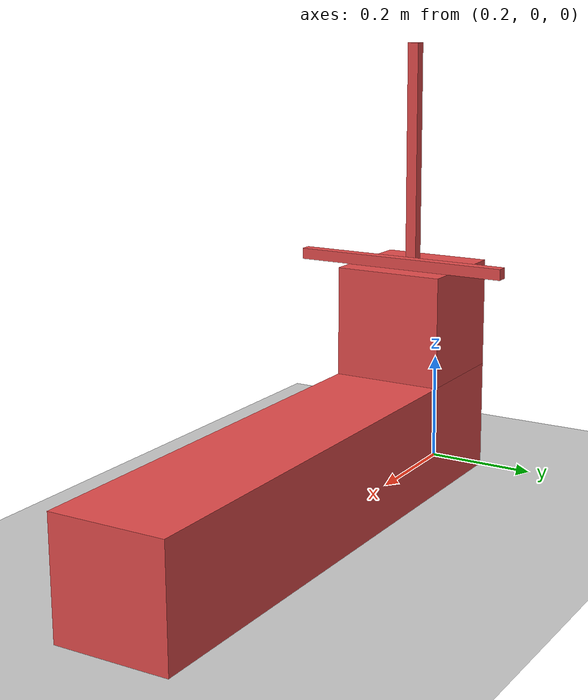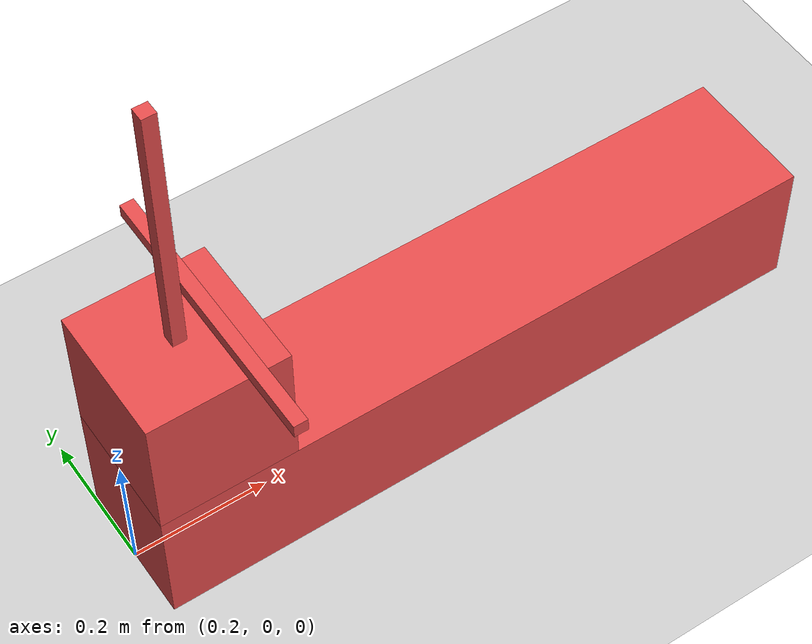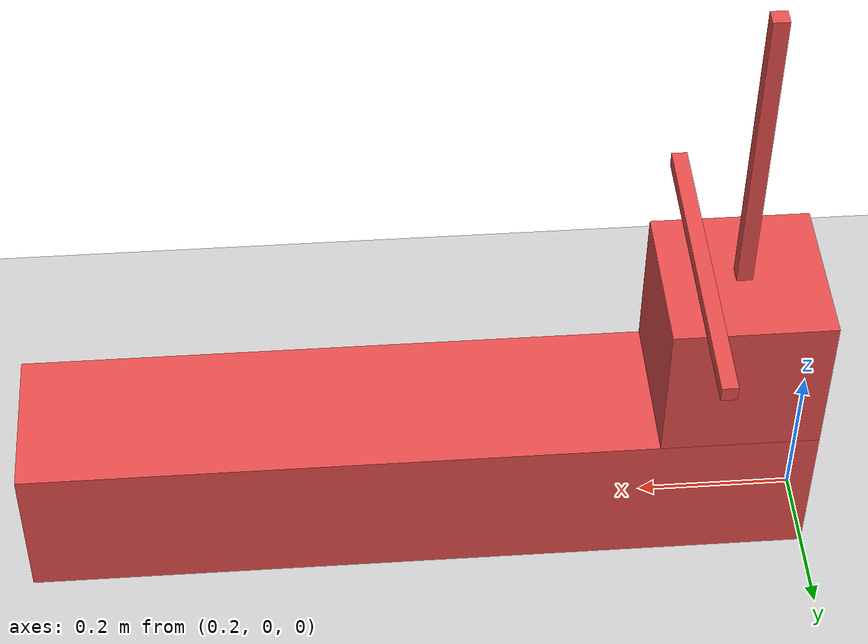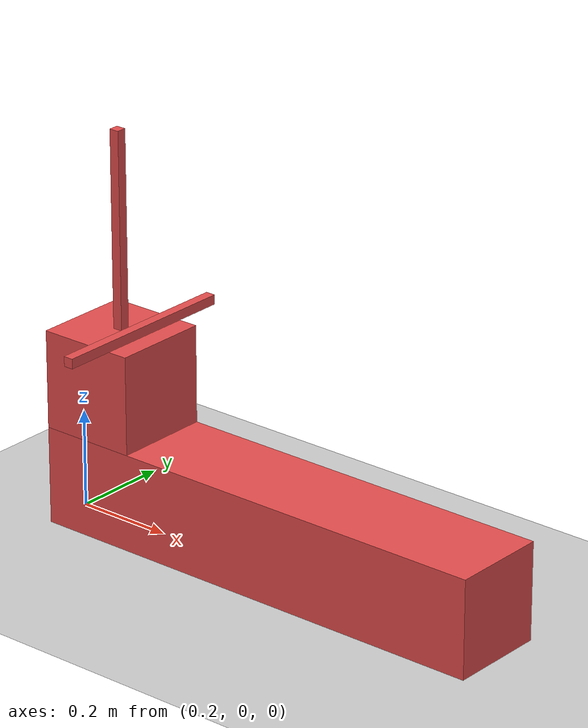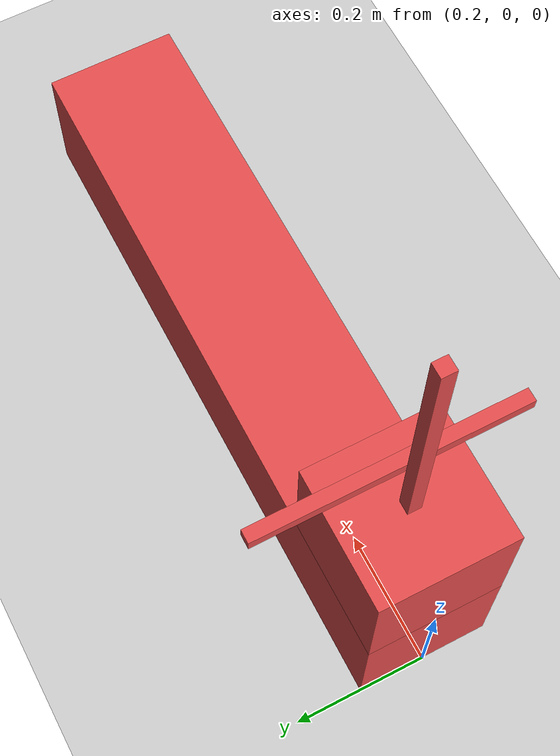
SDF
<sdf version="1.6">
 <world name="default">
  <light name="sun" type="directional">
   <pose>0 0 10 0 -0 0</pose>
   <diffuse>0.8 0.8 0.8 1</diffuse>
   <specular>0.2 0.2 0.2 1</specular>
   <attenuation>
    <range>1000</range>
    <constant>0.9</constant>
    <linear>0.01</linear>
    <quadratic>0.001</quadratic>
   </attenuation>
   <direction>-0.5 0.1 -0.9</direction>
  </light>
  <model name="ground_plane">
   <static>1</static>
   <link name="link">
    <collision name="collision">
     <geometry><plane><normal>0 0 1</normal><size>100 100</size></plane></geometry>
     <surface><friction><ode><mu>100</mu><mu2>50</mu2></ode></friction></surface>
    </collision>
    <sensor name="camera" type="camera">
     <camera name="camera_world">
      <pose>3.5 -3.5 3.5 -0 0.6 2.3</pose>
      <horizontal_fov>1.047</horizontal_fov>
      <image><width>1280</width><height>720</height></image>
      <clip><near>0.1</near><far>100</far></clip>
      <save enabled="1"><path>/tmp/camera_world</path></save>
     </camera>
     <always_on>0</always_on>
     <update_rate>30</update_rate>
     <visualize>0</visualize>
    </sensor>
    <visual name="visual">
     <cast_shadows>0</cast_shadows>
     <geometry><plane><normal>0 0 1</normal><size>100 100</size></plane></geometry>
     <material>
      <script><uri>file://media/materials/scripts/gazebo.material</uri><name>Gazebo/Grey</name></script>
     </material>
    </visual>
   </link>
  </model>
  <gravity>0 0 -9.8</gravity>
  <magnetic_field>6e-06 2.3e-05 -4.2e-05</magnetic_field>
  <atmosphere type="adiabatic"/>
  <physics name="default_physics" default="0" type="ode">
   <max_step_size>0.0005</max_step_size>
   <real_time_factor>1</real_time_factor>
   <real_time_update_rate>2000</real_time_update_rate>
  </physics>
  <scene><ambient>0.4 0.4 0.4 1</ambient><background>0.7 0.7 0.7 1</background><shadows>1</shadows></scene>
  <spherical_coordinates>
   <surface_model>EARTH_WGS84</surface_model>
   <latitude_deg>0</latitude_deg>
   <longitude_deg>0</longitude_deg>
   <elevation>0</elevation>
   <heading_deg>0</heading_deg>
  </spherical_coordinates>
  <include>
   <uri>../objects/BoxSmall</uri>
   <name>BoxSmall</name>
   <pose>0.3 0 0.3 0 -0 0</pose>
   <static>0</static>
  </include>
  <include>
   <uri>../objects/BoxBig</uri>
   <name>BoxBig</name>
   <pose>0.7 0 0.1 0 -0 0</pose>
   <static>0</static>
  </include>
  <include>
   <uri>../objects/Broom</uri>
   <name>Broom</name>
   <pose>0.3 0 0.6 0 -0 0</pose>
   <static>0</static>
  </include>
  <include>
   <uri>../objects/Cart</uri>
   <name>Cart</name>
   <pose>0.35 0 0.41 0 -0 0</pose>
   <static>0</static>
  </include>
 </world>
</sdf>

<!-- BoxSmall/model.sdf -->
<sdf version='1.6'>
  <model name='BoxSmall'>
    <link name='link'>
      <inertial>
        <mass>0.470029</mass>
        <inertia>
          <ixx>0.0013484</ixx>
          <ixy>0</ixy>
          <ixz>0</ixz>
          <iyy>0.00131238</iyy>
          <iyz>0</iyz>
          <izz>0.00199015</izz>
        </inertia>
        <pose frame=''>0 0 0 0 -0 0</pose>
      </inertial>
      <self_collide>0</self_collide>
      <enable_wind>0</enable_wind>
      <kinematic>0</kinematic>
      <pose frame=''>0 0 0 0 -0 0</pose>
      <gravity>1</gravity>
      <visual name='visual'>
        <pose frame=''>0 0 0 0 -0 0</pose>
        <geometry>
          <box>
            <size>0.2 0.2 0.2</size>
          </box>
        </geometry>
        <material>
          <shader type='pixel'>
            <normal_map>__default__</normal_map>
          </shader>
          <script>
            <name>ModelPreview_1::link::visual_MATERIAL_ModelPreview_1::link::visual_MATERIAL_</name>
            <uri>__default__</uri>
          </script>
          <ambient>0 0 0 1</ambient>
          <diffuse>0.9 0.3 0.3 1</diffuse>
          <specular>0.9 0.3 0.3 1</specular>
          <emissive>0.9 0.3 0.3 1</emissive>
        </material>
        <transparency>0</transparency>
        <cast_shadows>1</cast_shadows>
      </visual>
      <collision name='collision'>
        <laser_retro>0</laser_retro>
        <max_contacts>10</max_contacts>
        <pose frame=''>0 0 0 0 -0 0</pose>
        <geometry>
          <box>
            <size>0.2 0.2 0.2</size>
          </box>
        </geometry>
        <surface>
          <friction>
            <ode>
              <mu>1</mu>
              <mu2>1</mu2>
              <fdir1>0 0 0</fdir1>
              <slip1>0</slip1>
              <slip2>0</slip2>
            </ode>
            <torsional>
              <coefficient>1</coefficient>
              <patch_radius>0</patch_radius>
              <surface_radius>0</surface_radius>
              <use_patch_radius>1</use_patch_radius>
              <ode>
                <slip>0</slip>
              </ode>
            </torsional>
          </friction>
          <bounce>
            <restitution_coefficient>0</restitution_coefficient>
            <threshold>1e+06</threshold>
          </bounce>
          <contact>
            <collide_without_contact>0</collide_without_contact>
            <collide_without_contact_bitmask>1</collide_without_contact_bitmask>
            <collide_bitmask>1</collide_bitmask>
            <ode>
              <soft_cfm>0</soft_cfm>
              <soft_erp>0.2</soft_erp>
              <kp>100000</kp>
              <kd>1</kd>
              <max_vel>0.1</max_vel>
              <min_depth>0.001</min_depth>
            </ode>
            <bullet>
              <split_impulse>1</split_impulse>
              <split_impulse_penetration_threshold>-0.01</split_impulse_penetration_threshold>
              <soft_cfm>0</soft_cfm>
              <soft_erp>0.2</soft_erp>
              <kp>100000</kp>
              <kd>1</kd>
            </bullet>
          </contact>
        </surface>
      </collision>
    </link>
    <static>0</static>
    <allow_auto_disable>1</allow_auto_disable>
	<plugin name="get_object_world_pose" filename="libgazebo_yarp_GetObjectWorldPose.so" >
    </plugin>
  </model>
</sdf>

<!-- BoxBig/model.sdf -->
<sdf version='1.6'>
  <model name='BoxBig'>
    <link name='link'>
      <inertial>
        <mass>0.470029</mass>
        <inertia>
          <ixx>0.0013484</ixx>
          <ixy>0</ixy>
          <ixz>0</ixz>
          <iyy>0.00131238</iyy>
          <iyz>0</iyz>
          <izz>0.00199015</izz>
        </inertia>
        <pose frame=''>0 0 0 0 -0 0</pose>
      </inertial>
      <self_collide>0</self_collide>
      <enable_wind>0</enable_wind>
      <kinematic>0</kinematic>
      <pose frame=''>0 0 0 0 -0 0</pose>
      <gravity>1</gravity>
      <visual name='visual'>
        <pose frame=''>0 0 0 0 -0 0</pose>
        <geometry>
          <box>
            <size>1.0 0.2 0.2</size>
          </box>
        </geometry>
        <material>
          <shader type='pixel'>
            <normal_map>__default__</normal_map>
          </shader>
          <script>
            <name>ModelPreview_1::link::visual_MATERIAL_ModelPreview_1::link::visual_MATERIAL_</name>
            <uri>__default__</uri>
          </script>
          <ambient>0 0 0 1</ambient>
          <diffuse>0.9 0.3 0.3 1</diffuse>
          <specular>0.9 0.3 0.3 1</specular>
          <emissive>0.9 0.3 0.3 1</emissive>
        </material>
        <transparency>0</transparency>
        <cast_shadows>1</cast_shadows>
      </visual>
      <collision name='collision'>
        <laser_retro>0</laser_retro>
        <max_contacts>10</max_contacts>
        <pose frame=''>0 0 0 0 -0 0</pose>
        <geometry>
          <box>
            <size>1.0 0.2 0.2</size>
          </box>
        </geometry>
        <surface>
          <friction>
            <ode>
              <mu>1</mu>
              <mu2>1</mu2>
              <fdir1>0 0 0</fdir1>
              <slip1>0</slip1>
              <slip2>0</slip2>
            </ode>
            <torsional>
              <coefficient>1</coefficient>
              <patch_radius>0</patch_radius>
              <surface_radius>0</surface_radius>
              <use_patch_radius>1</use_patch_radius>
              <ode>
                <slip>0</slip>
              </ode>
            </torsional>
          </friction>
          <bounce>
            <restitution_coefficient>0</restitution_coefficient>
            <threshold>1e+06</threshold>
          </bounce>
          <contact>
            <collide_without_contact>0</collide_without_contact>
            <collide_without_contact_bitmask>1</collide_without_contact_bitmask>
            <collide_bitmask>1</collide_bitmask>
            <ode>
              <soft_cfm>0</soft_cfm>
              <soft_erp>0.2</soft_erp>
              <kp>100000</kp>
              <kd>1</kd>
              <max_vel>0.1</max_vel>
              <min_depth>0.001</min_depth>
            </ode>
            <bullet>
              <split_impulse>1</split_impulse>
              <split_impulse_penetration_threshold>-0.01</split_impulse_penetration_threshold>
              <soft_cfm>0</soft_cfm>
              <soft_erp>0.2</soft_erp>
              <kp>100000</kp>
              <kd>1</kd>
            </bullet>
          </contact>
        </surface>
      </collision>
    </link>
    <static>0</static>
    <allow_auto_disable>1</allow_auto_disable>
    <plugin name='get_object_world_pose' filename='libgazebo_yarp_GetObjectWorldPose.so'>
    </plugin>
  </model>
</sdf>

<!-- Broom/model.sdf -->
<sdf version='1.6'>
  <model name='Broom'>
    <link name='link'>
      <inertial>
        <mass>0.470029</mass>
        <inertia>
          <ixx>0.0013484</ixx>
          <ixy>0</ixy>
          <ixz>0</ixz>
          <iyy>0.00131238</iyy>
          <iyz>0</iyz>
          <izz>0.00199015</izz>
        </inertia>
        <pose frame=''>0 0 0 0 -0 0</pose>
      </inertial>
      <self_collide>0</self_collide>
      <enable_wind>0</enable_wind>
      <kinematic>0</kinematic>
      <pose frame=''>0 0 0 0 -0 0</pose>
      <gravity>1</gravity>
      <visual name='visual'>
        <pose frame=''>0 0 0 0 -0 0</pose>
        <geometry>
          <box>
            <size>0.02 0.02 0.4</size>
          </box>
        </geometry>
        <material>
          <shader type='pixel'>
            <normal_map>__default__</normal_map>
          </shader>
          <script>
            <name>ModelPreview_1::link::visual_MATERIAL_ModelPreview_1::link::visual_MATERIAL_</name>
            <uri>__default__</uri>
          </script>
          <ambient>0 0 0 1</ambient>
          <diffuse>0.9 0.3 0.3 1</diffuse>
          <specular>0.9 0.3 0.3 1</specular>
          <emissive>0.9 0.3 0.3 1</emissive>
        </material>
        <transparency>0</transparency>
        <cast_shadows>1</cast_shadows>
      </visual>
      <collision name='collision'>
        <laser_retro>0</laser_retro>
        <max_contacts>10</max_contacts>
        <pose frame=''>0 0 0 0 -0 0</pose>
        <geometry>
          <box>
            <size>0.02 0.02 0.4</size>
          </box>
        </geometry>
        <surface>
          <friction>
            <ode>
              <mu>1</mu>
              <mu2>1</mu2>
              <fdir1>0 0 0</fdir1>
              <slip1>0</slip1>
              <slip2>0</slip2>
            </ode>
            <torsional>
              <coefficient>1</coefficient>
              <patch_radius>0</patch_radius>
              <surface_radius>0</surface_radius>
              <use_patch_radius>1</use_patch_radius>
              <ode>
                <slip>0</slip>
              </ode>
            </torsional>
          </friction>
          <bounce>
            <restitution_coefficient>0</restitution_coefficient>
            <threshold>1e+06</threshold>
          </bounce>
          <contact>
            <collide_without_contact>0</collide_without_contact>
            <collide_without_contact_bitmask>1</collide_without_contact_bitmask>
            <collide_bitmask>1</collide_bitmask>
            <ode>
              <soft_cfm>0</soft_cfm>
              <soft_erp>0.2</soft_erp>
              <kp>100000</kp>
              <kd>1</kd>
              <max_vel>0.1</max_vel>
              <min_depth>0.001</min_depth>
            </ode>
            <bullet>
              <split_impulse>1</split_impulse>
              <split_impulse_penetration_threshold>-0.01</split_impulse_penetration_threshold>
              <soft_cfm>0</soft_cfm>
              <soft_erp>0.2</soft_erp>
              <kp>100000</kp>
              <kd>1</kd>
            </bullet>
          </contact>
        </surface>
      </collision>
    </link>
    <static>0</static>
    <allow_auto_disable>1</allow_auto_disable>
	<plugin name="get_object_world_pose" filename="libgazebo_yarp_GetObjectWorldPose.so" >
    </plugin>
  </model>
</sdf>

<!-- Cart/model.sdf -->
<sdf version='1.6'>
  <model name='cart'>
    <link name='link'>
      <inertial>
        <mass>0.470029</mass>
        <inertia>
          <ixx>0.0013484</ixx>
          <ixy>0</ixy>
          <ixz>0</ixz>
          <iyy>0.00131238</iyy>
          <iyz>0</iyz>
          <izz>0.00199015</izz>
        </inertia>
        <pose frame=''>0 0 0 0 -0 0</pose>
      </inertial>
      <self_collide>0</self_collide>
      <enable_wind>0</enable_wind>
      <kinematic>0</kinematic>
      <pose frame=''>0 0 0 0 -0 0</pose>
      <gravity>1</gravity>
      <visual name='visual'>
        <pose frame=''>0 0 0 0 -0 0</pose>
        <geometry>
          <box>
            <size>0.02 0.4 0.02</size>
          </box>
        </geometry>
        <material>
          <shader type='pixel'>
            <normal_map>__default__</normal_map>
          </shader>
          <script>
            <name>ModelPreview_1::link::visual_MATERIAL_ModelPreview_1::link::visual_MATERIAL_</name>
            <uri>__default__</uri>
          </script>
          <ambient>0 0 0 1</ambient>
          <diffuse>0.9 0.3 0.3 1</diffuse>
          <specular>0.9 0.3 0.3 1</specular>
          <emissive>0.9 0.3 0.3 1</emissive>
        </material>
        <transparency>0</transparency>
        <cast_shadows>1</cast_shadows>
      </visual>
      <collision name='collision'>
        <laser_retro>0</laser_retro>
        <max_contacts>10</max_contacts>
        <pose frame=''>0 0 0 0 -0 0</pose>
        <geometry>
          <box>
            <size>0.02 0.4 0.02</size>
          </box>
        </geometry>
        <surface>
          <friction>
            <ode>
              <mu>1</mu>
              <mu2>1</mu2>
              <fdir1>0 0 0</fdir1>
              <slip1>0</slip1>
              <slip2>0</slip2>
            </ode>
            <torsional>
              <coefficient>1</coefficient>
              <patch_radius>0</patch_radius>
              <surface_radius>0</surface_radius>
              <use_patch_radius>1</use_patch_radius>
              <ode>
                <slip>0</slip>
              </ode>
            </torsional>
          </friction>
          <bounce>
            <restitution_coefficient>0</restitution_coefficient>
            <threshold>1e+06</threshold>
          </bounce>
          <contact>
            <collide_without_contact>0</collide_without_contact>
            <collide_without_contact_bitmask>1</collide_without_contact_bitmask>
            <collide_bitmask>1</collide_bitmask>
            <ode>
              <soft_cfm>0</soft_cfm>
              <soft_erp>0.2</soft_erp>
              <kp>100000</kp>
              <kd>1</kd>
              <max_vel>0.1</max_vel>
              <min_depth>0.001</min_depth>
            </ode>
            <bullet>
              <split_impulse>1</split_impulse>
              <split_impulse_penetration_threshold>-0.01</split_impulse_penetration_threshold>
              <soft_cfm>0</soft_cfm>
              <soft_erp>0.2</soft_erp>
              <kp>100000</kp>
              <kd>1</kd>
            </bullet>
          </contact>
        </surface>
      </collision>
    </link>
    <static>0</static>
    <allow_auto_disable>1</allow_auto_disable>
	<plugin name="get_object_world_pose" filename="libgazebo_yarp_GetObjectWorldPose.so" >
    </plugin>
  </model>
</sdf>
